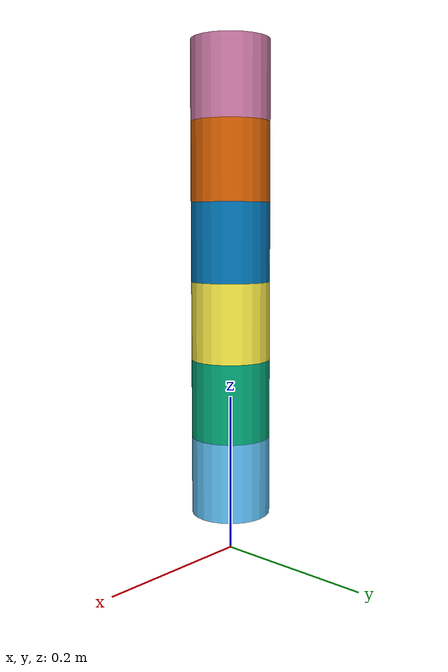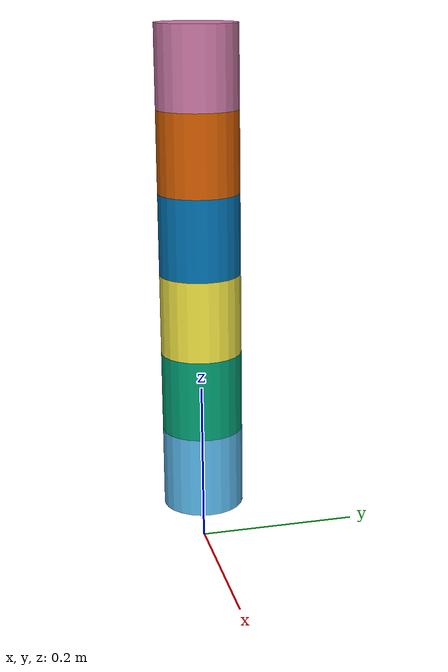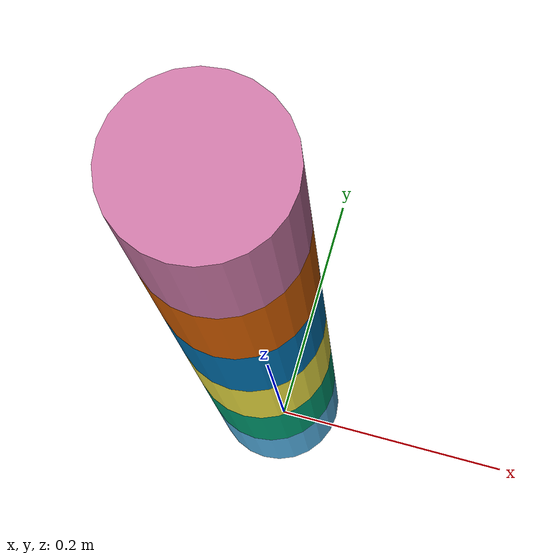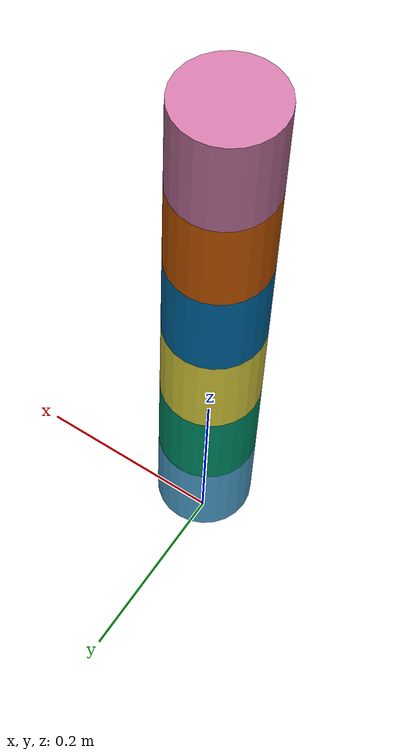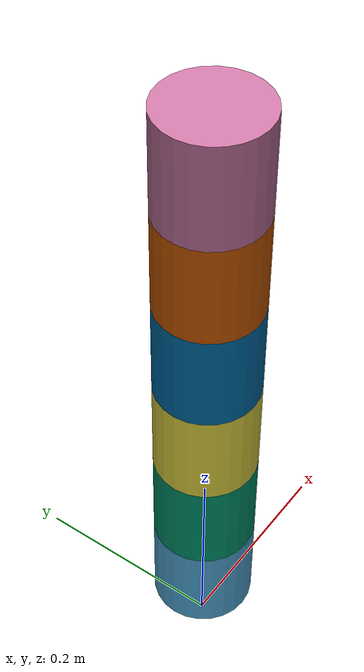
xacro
<?xml version="1.0"?>
<robot xmlns:xacro="http://www.ros.org/wiki/xacro" name="koala_robot">

  <link name="base_link"/>

  <link name="link_1">
    <visual>
      <geometry><cylinder length="0.1" radius="0.05"/></geometry>
    </visual>
  </link>

  <link name="link_2">
    <visual>
      <geometry><cylinder length="0.1" radius="0.05"/></geometry>
    </visual>
  </link>

  <link name="link_3">
    <visual>
      <geometry><cylinder length="0.1" radius="0.05"/></geometry>
    </visual>
  </link>

  <link name="link_4">
    <visual>
      <geometry><cylinder length="0.1" radius="0.05"/></geometry>
    </visual>
  </link>

  <link name="link_5">
    <visual>
      <geometry><cylinder length="0.1" radius="0.05"/></geometry>
    </visual>
  </link>

  <link name="link_6">
    <visual>
      <geometry><cylinder length="0.1" radius="0.05"/></geometry>
    </visual>
  </link>

  <joint name="joint_1" type="revolute">
    <parent link="base_link"/>
    <child link="link_1"/>
    <origin xyz="0 0 0.1" rpy="0 0 0"/>
    <axis xyz="0 0 1"/>
    <limit lower="-3.14" upper="3.14" effort="10" velocity="1.0"/>
  </joint>

  <joint name="joint_2" type="revolute">
    <parent link="link_1"/>
    <child link="link_2"/>
    <origin xyz="0 0 0.1" rpy="0 0 0"/>
    <axis xyz="0 0 1"/>
    <limit lower="-3.14" upper="3.14" effort="10" velocity="1.0"/>
  </joint>

  <joint name="joint_3" type="revolute">
    <parent link="link_2"/>
    <child link="link_3"/>
    <origin xyz="0 0 0.1" rpy="0 0 0"/>
    <axis xyz="0 0 1"/>
    <limit lower="-3.14" upper="3.14" effort="10" velocity="1.0"/>
  </joint>

  <joint name="joint_4" type="revolute">
    <parent link="link_3"/>
    <child link="link_4"/>
    <origin xyz="0 0 0.1" rpy="0 0 0"/>
    <axis xyz="0 0 1"/>
    <limit lower="-3.14" upper="3.14" effort="10" velocity="1.0"/>
  </joint>

  <joint name="joint_5" type="revolute">
    <parent link="link_4"/>
    <child link="link_5"/>
    <origin xyz="0 0 0.1" rpy="0 0 0"/>
    <axis xyz="0 0 1"/>
    <limit lower="-3.14" upper="3.14" effort="10" velocity="1.0"/>
  </joint>

  <joint name="joint_6" type="revolute">
    <parent link="link_5"/>
    <child link="link_6"/>
    <origin xyz="0 0 0.1" rpy="0 0 0"/>
    <axis xyz="0 0 1"/>
    <limit lower="-3.14" upper="3.14" effort="10" velocity="1.0"/>
  </joint>

  <ros2_control name="BearHardware" type="system">
    <hardware>
      <plugin>bear_hardware_interface/BearSystemHardware</plugin>
      <param name="port_name">/dev/ttyUSB0</param>
      <param name="baudrate">7500000</param>
      <param name="motor_ids">1,2,3,4,5,6</param>
    </hardware>

    <joint name="joint_1">
      <command_interface name="position"/>
      <command_interface name="velocity"/>
      <command_interface name="effort"/>
      <state_interface name="position"/>
      <state_interface name="velocity"/>
      <state_interface name="effort"/>
    </joint>

    <joint name="joint_2">
      <command_interface name="position"/>
      <command_interface name="velocity"/>
      <command_interface name="effort"/>
      <state_interface name="position"/>
      <state_interface name="velocity"/>
      <state_interface name="effort"/>
    </joint>

    <joint name="joint_3">
      <command_interface name="position"/>
      <command_interface name="velocity"/>
      <command_interface name="effort"/>
      <state_interface name="position"/>
      <state_interface name="velocity"/>
      <state_interface name="effort"/>
    </joint>

    <joint name="joint_4">
      <command_interface name="position"/>
      <command_interface name="velocity"/>
      <command_interface name="effort"/>
      <state_interface name="position"/>
      <state_interface name="velocity"/>
      <state_interface name="effort"/>
    </joint>

    <joint name="joint_5">
      <command_interface name="position"/>
      <command_interface name="velocity"/>
      <command_interface name="effort"/>
      <state_interface name="position"/>
      <state_interface name="velocity"/>
      <state_interface name="effort"/>
    </joint>

    <joint name="joint_6">
      <command_interface name="position"/>
      <command_interface name="velocity"/>
      <command_interface name="effort"/>
      <state_interface name="position"/>
      <state_interface name="velocity"/>
      <state_interface name="effort"/>
    </joint>

  </ros2_control>

</robot>
